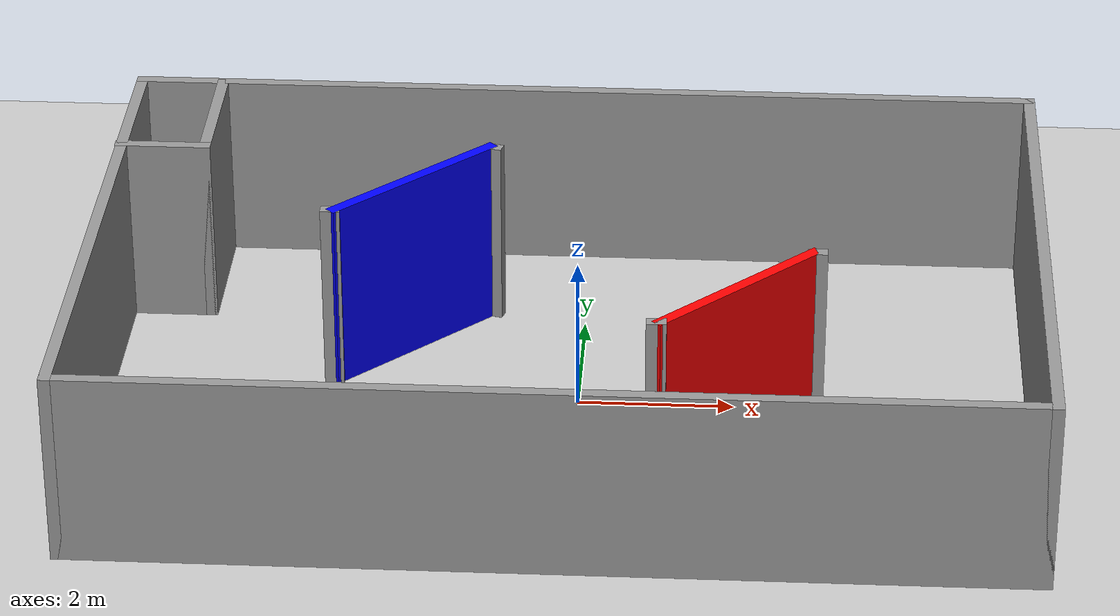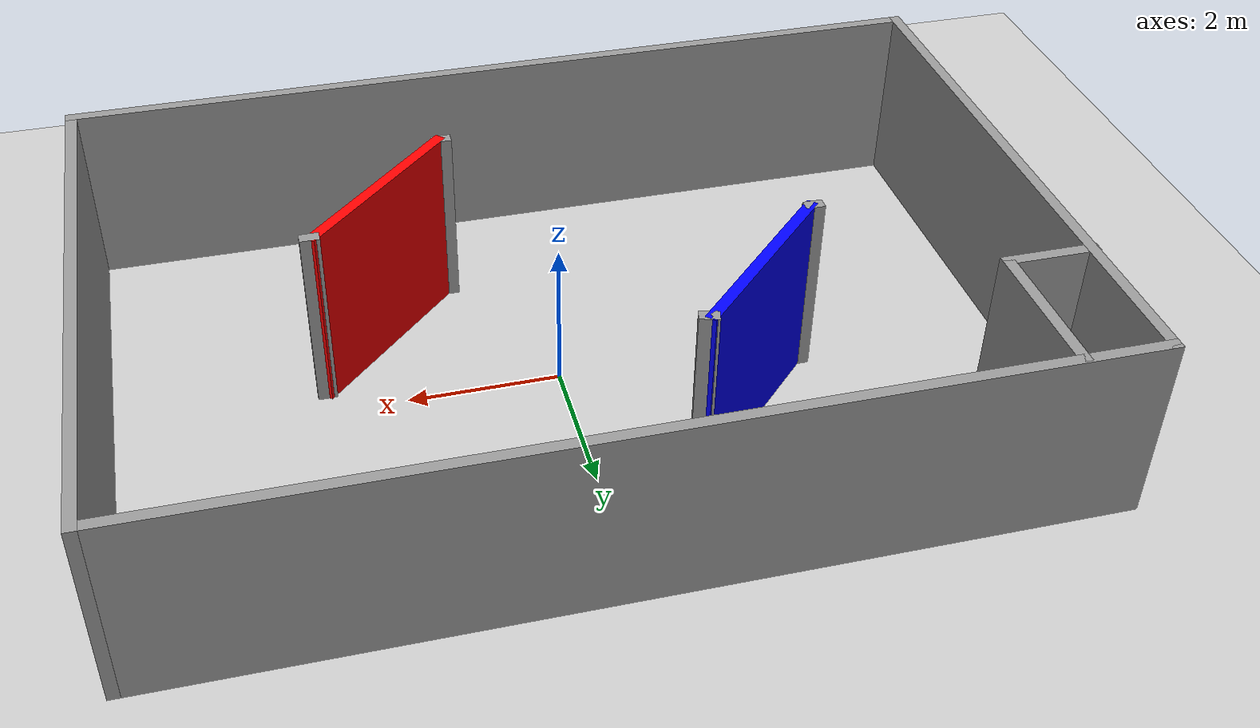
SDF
<sdf version="1.7">
 <world name="default">
  <light name="sun" type="directional">
   <pose>0 0 10 0 -0 0</pose>
   <diffuse>0.8 0.8 0.8 1</diffuse>
   <specular>0.2 0.2 0.2 1</specular>
   <attenuation>
    <range>1000</range>
    <constant>0.9</constant>
    <linear>0.01</linear>
    <quadratic>0.001</quadratic>
   </attenuation>
   <direction>-0.5 0.1 -0.9</direction>
   <spot><inner_angle>0</inner_angle><outer_angle>0</outer_angle><falloff>0</falloff></spot>
  </light>
  <model name="ground_plane">
   <static>1</static>
   <link name="link">
    <collision name="collision">
     <geometry><plane><normal>0 0 1</normal><size>100 100</size></plane></geometry>
     <surface><friction><ode><mu>100</mu><mu2>50</mu2></ode></friction></surface>
    </collision>
    <visual name="visual">
     <cast_shadows>0</cast_shadows>
     <geometry><plane><normal>0 0 1</normal><size>100 100</size></plane></geometry>
     <material>
      <script><uri>file://media/materials/scripts/gazebo.material</uri><name>Gazebo/Grey</name></script>
     </material>
    </visual>
   </link>
  </model>
  <gravity>0 0 -9.8</gravity>
  <magnetic_field>6e-06 2.3e-05 -4.2e-05</magnetic_field>
  <atmosphere type="adiabatic"/>
  <physics type="ode">
   <max_step_size>0.001</max_step_size>
   <real_time_factor>1</real_time_factor>
   <real_time_update_rate>1000</real_time_update_rate>
  </physics>
  <scene><ambient>0.4 0.4 0.4 1</ambient><background>0.7 0.7 0.7 1</background><shadows>1</shadows></scene>
  <audio><device>default</device></audio>
  <spherical_coordinates>
   <surface_model>EARTH_WGS84</surface_model>
   <latitude_deg>0</latitude_deg>
   <longitude_deg>0</longitude_deg>
   <elevation>0</elevation>
   <heading_deg>0</heading_deg>
  </spherical_coordinates>
  <model name="RMUL25a.world">
   <pose>-0.141413 0.00989 0 0 -0 0</pose>
   <link name="Wall_10">
    <collision name="Wall_10_Collision">
     <geometry><box><size>0.25 0.15 2.5</size></box></geometry>
     <pose>0 0 1.25 0 -0 0</pose>
    </collision>
    <visual name="Wall_10_Visual">
     <pose>0 0 1.25 0 -0 0</pose>
     <geometry><box><size>0.25 0.15 2.5</size></box></geometry>
     <material>
      <script><uri>file://media/materials/scripts/gazebo.material</uri><name>Gazebo/Grey</name></script>
      <ambient>1 1 1 1</ambient>
     </material>
     <meta><layer>0</layer></meta>
    </visual>
    <pose>-1.08048 2.22004 0 0 -0 -0.261799</pose>
   </link>
   <link name="Wall_14">
    <collision name="Wall_14_Collision">
     <geometry><box><size>0.25 0.15 2.5</size></box></geometry>
     <pose>0 0 1.25 0 -0 0</pose>
    </collision>
    <visual name="Wall_14_Visual">
     <pose>0 0 1.25 0 -0 0</pose>
     <geometry><box><size>0.25 0.15 2.5</size></box></geometry>
     <material>
      <script><uri>file://media/materials/scripts/gazebo.material</uri><name>Gazebo/Grey</name></script>
      <ambient>1 1 1 1</ambient>
     </material>
     <meta><layer>0</layer></meta>
    </visual>
    <pose>1.20325 -2.216 0 0 -0 0</pose>
   </link>
   <link name="Wall_15">
    <collision name="Wall_15_Collision">
     <geometry><box><size>2.75 0.15 2.5</size></box></geometry>
     <pose>0 0 1.25 0 -0 0</pose>
    </collision>
    <visual name="Wall_15_Visual">
     <pose>0 0 1.25 0 -0 0</pose>
     <geometry><box><size>2.75 0.15 2.5</size></box></geometry>
     <material>
      <script><uri>file://media/materials/scripts/gazebo.material</uri><name>Gazebo/Grey</name></script>
      <ambient>1 0 0 1</ambient>
     </material>
     <meta><layer>0</layer></meta>
    </visual>
    <pose>2.17249 -1.29676 0 0 -0 0.785398</pose>
   </link>
   <link name="Wall_16">
    <collision name="Wall_16_Collision">
     <geometry><box><size>0.25 0.15 2.5</size></box></geometry>
     <pose>0 0 1.25 0 -0 0</pose>
    </collision>
    <visual name="Wall_16_Visual">
     <pose>0 0 1.25 0 -0 0</pose>
     <geometry><box><size>0.25 0.15 2.5</size></box></geometry>
     <material>
      <script><uri>file://media/materials/scripts/gazebo.material</uri><name>Gazebo/Grey</name></script>
      <ambient>1 1 1 1</ambient>
     </material>
     <meta><layer>0</layer></meta>
    </visual>
    <pose>3.14173 -0.377522 0 0 -0 0</pose>
   </link>
   <link name="Wall_18">
    <collision name="Wall_18_Collision">
     <geometry><box><size>1.25 0.15 2.5</size></box></geometry>
     <pose>0 0 1.25 0 -0 0</pose>
    </collision>
    <visual name="Wall_18_Visual">
     <pose>0 0 1.25 0 -0 0</pose>
     <geometry><box><size>1.25 0.15 2.5</size></box></geometry>
     <material>
      <script><uri>file://media/materials/scripts/gazebo.material</uri><name>Gazebo/Grey</name></script>
      <ambient>1 1 1 1</ambient>
     </material>
     <meta><layer>0</layer></meta>
    </visual>
    <pose>-5.38075 2.0505 0 0 -0 0</pose>
   </link>
   <link name="Wall_19">
    <collision name="Wall_19_Collision">
     <geometry><box><size>2 0.15 2.5</size></box></geometry>
     <pose>0 0 1.25 0 -0 0</pose>
    </collision>
    <visual name="Wall_19_Visual">
     <pose>0 0 1.25 0 -0 0</pose>
     <geometry><box><size>2 0.15 2.5</size></box></geometry>
     <material>
      <script><uri>file://media/materials/scripts/gazebo.material</uri><name>Gazebo/Grey</name></script>
      <ambient>1 1 1 1</ambient>
     </material>
     <meta><layer>0</layer></meta>
    </visual>
    <pose>-4.83075 2.9755 0 0 -0 1.5708</pose>
   </link>
   <link name="Wall_2">
    <collision name="Wall_2_Collision">
     <geometry><box><size>8 0.15 2.5</size></box></geometry>
     <pose>0 0 1.25 0 -0 0</pose>
    </collision>
    <visual name="Wall_2_Visual">
     <pose>0 0 1.25 0 -0 0</pose>
     <geometry><box><size>8 0.15 2.5</size></box></geometry>
     <material>
      <script><uri>file://media/materials/scripts/gazebo.material</uri><name>Gazebo/Grey</name></script>
      <ambient>0 0 0 1</ambient>
     </material>
     <meta><layer>0</layer></meta>
    </visual>
    <pose>-5.91925 -0 0 0 -0 -1.5708</pose>
   </link>
   <link name="Wall_3">
    <collision name="Wall_3_Collision">
     <geometry><box><size>12 0.15 2.5</size></box></geometry>
     <pose>0 0 1.25 0 -0 0</pose>
    </collision>
    <visual name="Wall_3_Visual">
     <pose>0 0 1.25 0 -0 0</pose>
     <geometry><box><size>12 0.15 2.5</size></box></geometry>
     <material>
      <script><uri>file://media/materials/scripts/gazebo.material</uri><name>Gazebo/Grey</name></script>
      <ambient>0 0 0 1</ambient>
     </material>
     <meta><layer>0</layer></meta>
    </visual>
    <pose>0.00575 -3.925 0 0 -0 0</pose>
   </link>
   <link name="Wall_4">
    <collision name="Wall_4_Collision">
     <geometry><box><size>8 0.15 2.5</size></box></geometry>
     <pose>0 0 1.25 0 -0 0</pose>
    </collision>
    <visual name="Wall_4_Visual">
     <pose>0 0 1.25 0 -0 0</pose>
     <geometry><box><size>8 0.15 2.5</size></box></geometry>
     <material>
      <script><uri>file://media/materials/scripts/gazebo.material</uri><name>Gazebo/Grey</name></script>
      <ambient>0 0 0 1</ambient>
     </material>
     <meta><layer>0</layer></meta>
    </visual>
    <pose>5.93075 -0 0 0 -0 1.5708</pose>
   </link>
   <link name="Wall_5">
    <collision name="Wall_5_Collision">
     <geometry><box><size>12 0.15 2.5</size></box></geometry>
     <pose>0 0 1.25 0 -0 0</pose>
    </collision>
    <visual name="Wall_5_Visual">
     <pose>0 0 1.25 0 -0 0</pose>
     <geometry><box><size>12 0.15 2.5</size></box></geometry>
     <material>
      <script><uri>file://media/materials/scripts/gazebo.material</uri><name>Gazebo/Grey</name></script>
      <ambient>0 0 0 1</ambient>
     </material>
     <meta><layer>0</layer></meta>
    </visual>
    <pose>0.00575 3.925 0 0 -0 3.14159</pose>
   </link>
   <link name="Wall_8">
    <collision name="Wall_8_Collision">
     <geometry><box><size>0.25 0.15 2.5</size></box></geometry>
     <pose>0 0 1.25 0 -0 0</pose>
    </collision>
    <visual name="Wall_8_Visual">
     <pose>0 0 1.25 0 -0 0</pose>
     <geometry><box><size>0.25 0.15 2.5</size></box></geometry>
     <material>
      <script><uri>file://media/materials/scripts/gazebo.material</uri><name>Gazebo/Grey</name></script>
      <ambient>1 1 1 1</ambient>
     </material>
     <meta><layer>0</layer></meta>
    </visual>
    <pose>-3.01725 0.3945 0 0 -0 0</pose>
   </link>
   <link name="Wall_9">
    <collision name="Wall_9_Collision">
     <geometry><box><size>2.75 0.15 2.5</size></box></geometry>
     <pose>0 0 1.25 0 -0 0</pose>
    </collision>
    <visual name="Wall_9_Visual">
     <pose>0 0 1.25 0 -0 0</pose>
     <geometry><box><size>2.75 0.15 2.5</size></box></geometry>
     <material>
      <script><uri>file://media/materials/scripts/gazebo.material</uri><name>Gazebo/Grey</name></script>
      <ambient>0 0 1 1</ambient>
     </material>
     <meta><layer>0</layer></meta>
    </visual>
    <pose>-2.04801 1.31374 0 0 -0 0.785398</pose>
   </link>
   <static>1</static>
  </model>
 </world>
</sdf>
